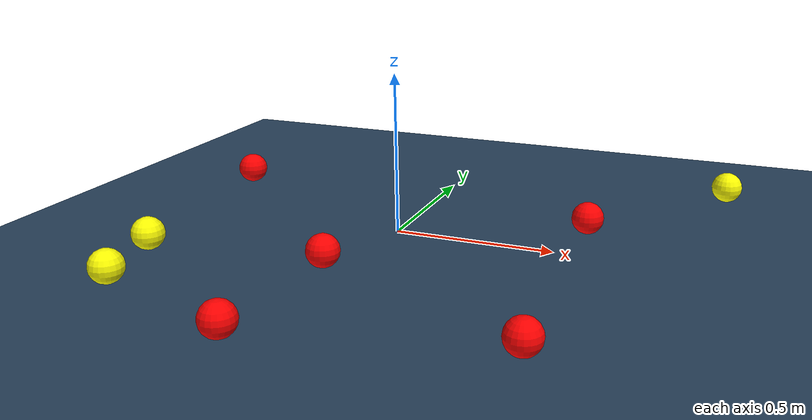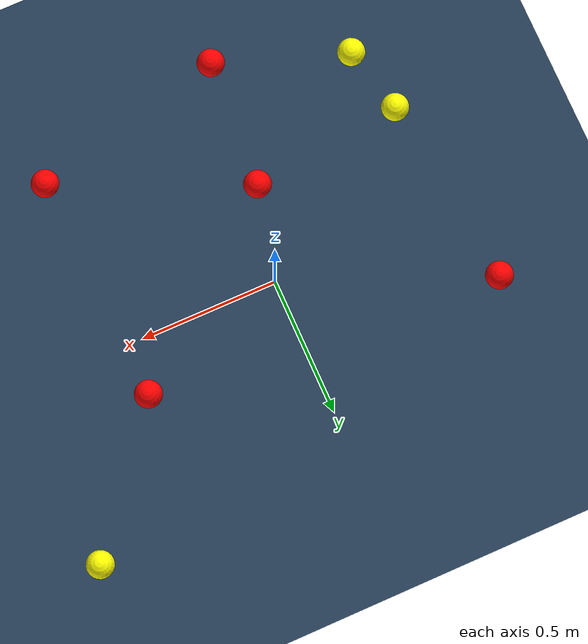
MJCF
<mujoco model="turtlebot3_burger">
  <compiler angle="radian" meshdir="../../robot/" autolimits="true"/>

  <asset>
    <!-- sky and plane -->
    <texture type="skybox" builtin="gradient" width="2048" height="2048"/>
    <texture name="grid" type="2d" builtin="checker" width="512" height="512" rgb1=".1 .2 .3" rgb2=".2 .3 .4"/>
    <material name="grid" texture="grid" texrepeat="1 1" texuniform="true" reflectance=".2"/>

    <!-- robot -->
    <mesh name="burger_base" file="burger_base.stl" scale="0.001 0.001 0.001"/>
    <mesh name="left_tire" file="left_tire.stl" scale="0.001 0.001 0.001"/>
    <mesh name="right_tire" file="right_tire.stl" scale="0.001 0.001 0.001"/>
    <mesh name="lds" file="lds.stl" scale="0.001 0.001 0.001"/>
  </asset>

  <worldbody>
    <!-- sky and plane -->
    <light cutoff="100" diffuse="1 1 1" dir="0 0 -1.3" directional="true" exponent="1" pos="0 0 1.3" specular="0.1 0.1 0.1"/>
	  <geom name="floor" type="plane" size="100 100 .2" material="grid" friction="0 0.005 0.0001"/>

    <!-- human agents -->
    <body name="human0" pos="0.9398197043239886 0.6648852816008435 0.05">
      <freejoint name="human0"/>
      <geom pos="0 0 0" size="0.05" type="sphere" rgba="1 1 0 1"/>
    </body>

    <body name="human1" pos="-0.5753217786434477 -0.6363500655857988 0.05">
      <freejoint name="human1"/>
      <geom pos="0 0 0" size="0.05" type="sphere" rgba="1 1 0 1"/>
    </body>

    <body name="human2" pos="-0.6331909802931324 -0.39151551408092455 0.05">
      <freejoint name="human2"/>
      <geom pos="0 0 0" size="0.05" type="sphere" rgba="1 1 0 1"/>
    </body>

    <!-- robot agents -->
    <body name="robot0" pos="0.5930859737204657 -0.6331304202676724 0.05">
      <freejoint name="robot0"/>
      <geom pos="0 0 0" size="0.05" type="sphere" rgba="1 0 0 1"/>
    </body>

    <body name="robot1" pos="0.5593820005455385 0.19370031589297398 0.05">
      <freejoint name="robot1"/>
      <geom pos="0 0 0" size="0.05" type="sphere" rgba="1 0 0 1"/>
    </body>

    <body name="robot2" pos="-0.10833449429281772 -0.8000501683639942 0.05">
      <freejoint name="robot2"/>
      <geom pos="0 0 0" size="0.05" type="sphere" rgba="1 0 0 1"/>
    </body>

    <body name="robot3" pos="-0.08150221606826569 -0.3325827777219563 0.05">
      <freejoint name="robot3"/>
      <geom pos="0 0 0" size="0.05" type="sphere" rgba="1 0 0 1"/>
    </body>

    <body name="robot4" pos="-0.7142663641561184 0.30177694589770576 0.05">
      <freejoint name="robot4"/>
      <geom pos="0 0 0" size="0.05" type="sphere" rgba="1 0 0 1"/>
    </body>

    <!-- goal positions -->
<!-- goals -->

  </worldbody>
</mujoco>
